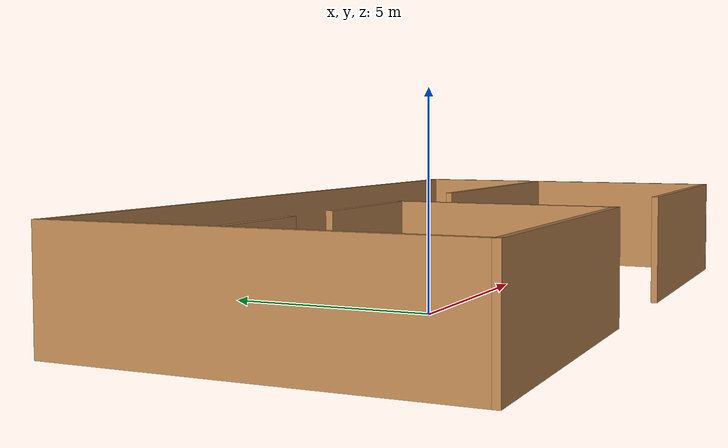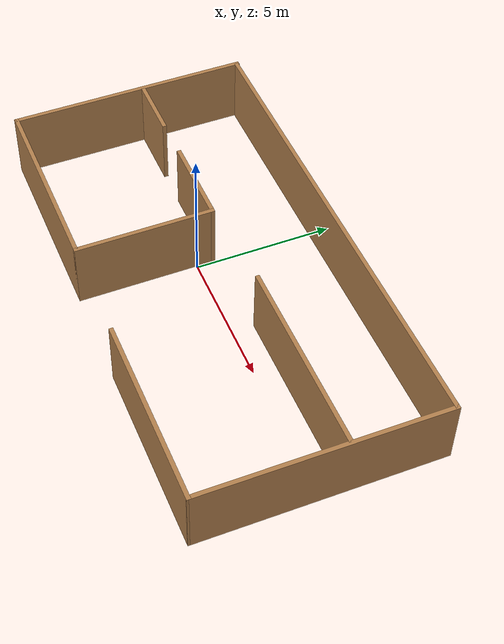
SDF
<?xml version='1.0'?>
<sdf version='1.7'>
  <model name='house_bones_2'>
    <pose>1.61212 0.061652 0 0 -0 0</pose>
    <link name='Wall_13'>
      <collision name='Wall_13_Collision'>
        <geometry>
          <box>
            <size>7 0.15 2.5</size>
          </box>
        </geometry>
        <pose>0 0 1.25 0 -0 0</pose>
      </collision>
      <visual name='Wall_13_Visual'>
        <pose>0 0 1.25 0 -0 0</pose>
        <geometry>
          <box>
            <size>7 0.15 2.5</size>
          </box>
        </geometry>
        <material>
          <script>
            <uri>file://media/materials/scripts/gazebo.material</uri>
            <name>Gazebo/Wood</name>
          </script>
          <ambient>0.760784 0.662745 0.627451 1</ambient>
        </material>
        <meta>
          <layer>0</layer>
        </meta>
      </visual>
      <pose>-5.17732 -4.28647 0 0 -0 0</pose>
    </link>
    <link name='Wall_15'>
      <collision name='Wall_15_Collision'>
        <geometry>
          <box>
            <size>6.75 0.15 2.5</size>
          </box>
        </geometry>
        <pose>0 0 1.25 0 -0 0</pose>
      </collision>
      <visual name='Wall_15_Visual'>
        <pose>0 0 1.25 0 -0 0</pose>
        <geometry>
          <box>
            <size>6.75 0.15 2.5</size>
          </box>
        </geometry>
        <material>
          <script>
            <uri>file://media/materials/scripts/gazebo.material</uri>
            <name>Gazebo/Wood</name>
          </script>
          <ambient>0.760784 0.662745 0.627451 1</ambient>
        </material>
        <meta>
          <layer>0</layer>
        </meta>
      </visual>
      <pose>5.23136 -4.31307 0 0 -0 0</pose>
    </link>
    <link name='Wall_16'>
      <collision name='Wall_16_Collision'>
        <geometry>
          <box>
            <size>8.75 0.15 2.5</size>
          </box>
        </geometry>
        <pose>0 0 1.25 0 -0 0</pose>
      </collision>
      <visual name='Wall_16_Visual'>
        <pose>0 0 1.25 0 -0 0</pose>
        <geometry>
          <box>
            <size>8.75 0.15 2.5</size>
          </box>
        </geometry>
        <material>
          <script>
            <uri>file://media/materials/scripts/gazebo.material</uri>
            <name>Gazebo/Wood</name>
          </script>
          <ambient>0.760784 0.662745 0.627451 1</ambient>
        </material>
        <meta>
          <layer>0</layer>
        </meta>
      </visual>
      <pose>8.56654 -0.013067 0 0 -0 1.56262</pose>
    </link>
    <link name='Wall_18'>
      <collision name='Wall_18_Collision'>
        <geometry>
          <box>
            <size>17.25 0.15 2.5</size>
          </box>
        </geometry>
        <pose>0 0 1.25 0 -0 0</pose>
      </collision>
      <visual name='Wall_18_Visual'>
        <pose>0 0 1.25 0 -0 0</pose>
        <geometry>
          <box>
            <size>17.25 0.15 2.5</size>
          </box>
        </geometry>
        <material>
          <script>
            <uri>file://media/materials/scripts/gazebo.material</uri>
            <name>Gazebo/Wood</name>
          </script>
          <ambient>0.760784 0.662745 0.627451 1</ambient>
        </material>
        <meta>
          <layer>0</layer>
        </meta>
      </visual>
      <pose>0.016535 4.28693 0 0 -0 3.14159</pose>
    </link>
    <link name='Wall_23'>
      <collision name='Wall_23_Collision'>
        <geometry>
          <box>
            <size>8.75 0.15 2.5</size>
          </box>
        </geometry>
        <pose>0 0 1.25 0 -0 0</pose>
      </collision>
      <visual name='Wall_23_Visual'>
        <pose>0 0 1.25 0 -0 0</pose>
        <geometry>
          <box>
            <size>8.75 0.15 2.5</size>
          </box>
        </geometry>
        <material>
          <script>
            <uri>file://media/materials/scripts/gazebo.material</uri>
            <name>Gazebo/Wood</name>
          </script>
          <ambient>0.760784 0.662745 0.627451 1</ambient>
        </material>
        <meta>
          <layer>0</layer>
        </meta>
      </visual>
      <pose>-8.60232 0.013534 0 0 -0 1.5708</pose>
    </link>
    <link name='Wall_33'>
      <collision name='Wall_33_Collision'>
        <geometry>
          <box>
            <size>5 0.15 2.5</size>
          </box>
        </geometry>
        <pose>0 0 1.25 0 -0 0</pose>
      </collision>
      <visual name='Wall_33_Visual'>
        <pose>0 0 1.25 0 -0 0</pose>
        <geometry>
          <box>
            <size>5 0.15 2.5</size>
          </box>
        </geometry>
        <material>
          <script>
            <uri>file://media/materials/scripts/gazebo.material</uri>
            <name>Gazebo/Wood</name>
          </script>
          <ambient>0.760784 0.662745 0.627451 1</ambient>
        </material>
        <meta>
          <layer>0</layer>
        </meta>
      </visual>
      <pose>-1.75232 -1.86147 0 0 -0 1.5708</pose>
    </link>
    <link name='Wall_34'>
      <collision name='Wall_34_Collision'>
        <geometry>
          <box>
            <size>3.25 0.15 2.5</size>
          </box>
        </geometry>
        <pose>0 0 1.25 0 -0 0</pose>
      </collision>
      <visual name='Wall_34_Visual'>
        <pose>0 0 1.25 0 -0 0</pose>
        <geometry>
          <box>
            <size>3.25 0.15 2.5</size>
          </box>
        </geometry>
        <material>
          <script>
            <uri>file://media/materials/scripts/gazebo.material</uri>
            <name>Gazebo/Wood</name>
          </script>
          <ambient>0.760784 0.662745 0.627451 1</ambient>
        </material>
        <meta>
          <layer>0</layer>
        </meta>
      </visual>
      <pose>-3.30232 0.563534 0 0 -0 3.14159</pose>
    </link>
    <link name='Wall_36'>
      <collision name='Wall_36_Collision'>
        <geometry>
          <box>
            <size>2.25 0.15 2.5</size>
          </box>
        </geometry>
        <pose>0 0 1.25 0 -0 0</pose>
      </collision>
      <visual name='Wall_36_Visual'>
        <pose>0 0 1.25 0 -0 0</pose>
        <geometry>
          <box>
            <size>2.25 0.15 2.5</size>
          </box>
        </geometry>
        <material>
          <script>
            <uri>file://media/materials/scripts/gazebo.material</uri>
            <name>Gazebo/Wood</name>
          </script>
          <ambient>0.760784 0.662745 0.627451 1</ambient>
        </material>
        <meta>
          <layer>0</layer>
        </meta>
      </visual>
      <pose>-7.4337 0.548021 0 0 -0 0</pose>
    </link>
    <link name='Wall_38'>
      <collision name='Wall_38_Collision'>
        <geometry>
          <box>
            <size>7 0.15 2.5</size>
          </box>
        </geometry>
        <pose>0 0 1.25 0 -0 0</pose>
      </collision>
      <visual name='Wall_38_Visual'>
        <pose>0 0 1.25 0 -0 0</pose>
        <geometry>
          <box>
            <size>7 0.15 2.5</size>
          </box>
        </geometry>
        <material>
          <script>
            <uri>file://media/materials/scripts/gazebo.material</uri>
            <name>Gazebo/Wood</name>
          </script>
          <ambient>0.760784 0.662745 0.627451 1</ambient>
        </material>
        <meta>
          <layer>0</layer>
        </meta>
      </visual>
      <pose>5.04741 0.803177 0 0 -0 3.14159</pose>
    </link>
    <static>1</static>
  </model>
</sdf>
